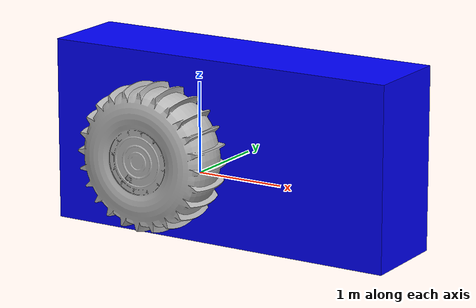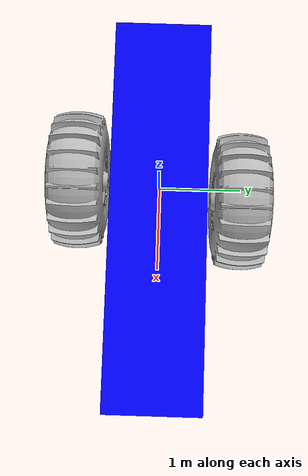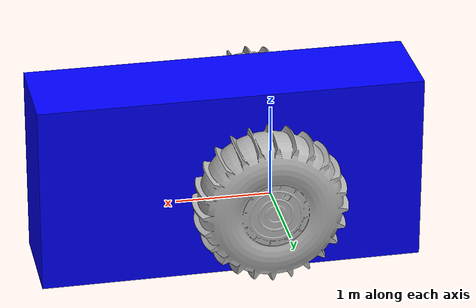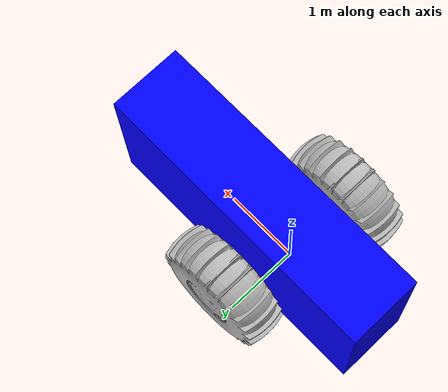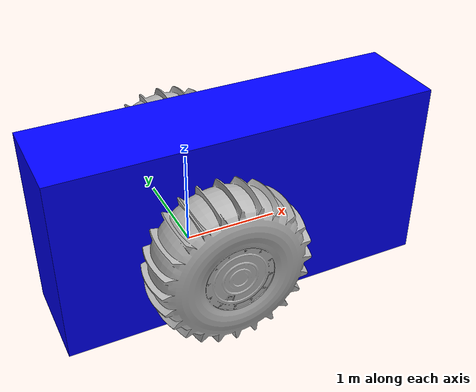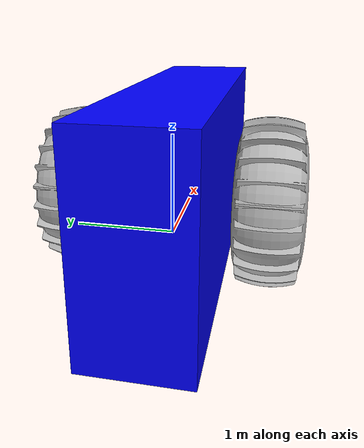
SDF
<?xml version="1.0" ?>
<sdf version="1.10">
  <model name='robot_car' canonical_link='chassis'>
    <pose>0 0 0 0 0 0</pose>   <!--the pose is relative to the world by default-->

    <!--chassis-->

    <link name='chassis'>
      <pose relative_to='__model__'>0.5 0 0.4 0 0 0</pose>
      <inertial>
        <mass>1.14395</mass>
        <inertia>
          <ixx>0.095329</ixx>
          <ixy>0</ixy>
          <ixz>0</ixz>
          <iyy>0.381317</iyy>
          <iyz>0</iyz>
          <izz>0.476646</izz>
        </inertia>
      </inertial>

      <visual name='visual'>
        <geometry>
          <box>
            <size>4.0 1.0 2.0</size>
          </box>
        </geometry>
        <!--Color of the link-->
        <material>
          <ambient>0.0 0.0 1.0 1</ambient>
          <diffuse>0.0 0.0 1.0 1</diffuse>
          <specular>0.0 0.0 1.0 1</specular>
        </material>
      </visual>

      <collision name='collision'>
        <geometry>
          <box>
            <size>2.0 1.0 0.5</size> <!-- You may adjust this to fit the Sherpa mesh dimensions -->
          </box>
        </geometry>
      </collision>
    </link>

    <!--Left wheel-->
    <link name='left_wheel'>
      <pose relative_to="chassis">-0.3 0.6 0 -1.5707 0 0</pose> <!--angles are in radian-->
      <inertial>
        <mass>1</mass>
        <inertia>
          <ixx>0.043333</ixx>
          <ixy>0</ixy>
          <ixz>0</ixz>
          <iyy>0.043333</iyy>
          <iyz>0</iyz>
          <izz>0.08</izz>
        </inertia>
      </inertial>
      <visual name='visual'>    <!--ERROR HERE-->
        <pose>0 0 0 1.5707 0 0</pose>
        <geometry>
          <mesh>
            <uri>meshes/wheel.obj</uri>
            <scale>1 1 1</scale>
          </mesh>
        </geometry>
      </visual>
      <collision name='collision'>
        <geometry>
          <cylinder>
            <radius>0.4</radius>
            <length>0.2</length>
          </cylinder>
        </geometry>
      </collision>
    </link>

    <!--The same as left wheel but with different position-->
    <link name='right_wheel'>
      <pose relative_to="chassis">-0.5 -0.6 0 1.5707 0 0</pose> <!--angles are in radian-->
      <inertial>
        <mass>1</mass>
        <inertia>
          <ixx>0.043333</ixx>
          <ixy>0</ixy>
          <ixz>0</ixz>
          <iyy>0.043333</iyy>
          <iyz>0</iyz>
          <izz>0.08</izz>
        </inertia>
      </inertial>
      <visual name='visual'>      <!--ERROR HERE-->
        <pose>0 0 0 1.5707 0 0</pose>
        <geometry>
          <mesh>
            <uri>meshes/wheel.obj</uri>
            <scale>1 1 1</scale>
          </mesh>
        </geometry>
      </visual>
      <collision name='collision'>
        <geometry>
          <cylinder>
            <radius>0.4</radius>
            <length>0.2</length>
          </cylinder>
        </geometry>
      </collision>
    </link>

    <!--arbitrary frame-->
    <frame name="caster_frame" attached_to='chassis'>
      <pose>0.8 0 -0.2 0 0 0</pose>
    </frame>

    <!--caster wheel-->
    <link name='caster'>
      <pose relative_to='caster_frame'/>
      <inertial>
        <mass>1</mass>
        <inertia>
          <ixx>0.016</ixx>
          <ixy>0</ixy>
          <ixz>0</ixz>
          <iyy>0.016</iyy>
          <iyz>0</iyz>
          <izz>0.016</izz>
        </inertia>
      </inertial>
      <visual name='visual'>
        <geometry>
          <sphere>
            <radius>0.2</radius>
          </sphere>
        </geometry>
        <material>
          <ambient>0.0 1 0.0 1</ambient>
          <diffuse>0.0 1 0.0 1</diffuse>
          <specular>0.0 1 0.0 1</specular>
        </material>
      </visual>
      <collision name='collision'>
        <geometry>
          <sphere>
            <radius>0.2</radius>
          </sphere>
        </geometry>
      </collision>
    </link>

    <!--left wheel joint-->
    <joint name='left_wheel_joint' type='revolute'>
      <pose relative_to='left_wheel'/>
      <parent>chassis</parent>
      <child>left_wheel</child>
      <axis>
        <xyz expressed_in='__model__'>0 1 0</xyz> <!--can be descired to any frame or even arbitrary frames-->
        <limit>
          <lower>-1.79769e+308</lower>    <!--negative infinity-->
          <upper>1.79769e+308</upper>     <!--positive infinity-->
        </limit>
      </axis>
    </joint>

    <!--right wheel joint-->
    <joint name='right_wheel_joint' type='revolute'>
      <pose relative_to='right_wheel'/>
      <parent>chassis</parent>
      <child>right_wheel</child>
      <axis>
        <xyz expressed_in='__model__'>0 1 0</xyz>
        <limit>
          <lower>-1.79769e+308</lower>    <!--negative infinity-->
          <upper>1.79769e+308</upper>     <!--positive infinity-->
        </limit>
      </axis>
    </joint>

    <!--caster wheel joint--> <!--pose defult value is the child-->
    <joint name='caster_wheel' type='ball'>
      <parent>chassis</parent>
      <child>caster</child>
    </joint>
    <plugin
      filename="gz-sim-diff-drive-system"
      name="gz::sim::systems::DiffDrive">
    <left_joint>left_wheel_joint</left_joint>
    <right_joint>right_wheel_joint</right_joint>
    <wheel_separation>1.2</wheel_separation>
    <wheel_radius>0.4</wheel_radius>
    <odom_publish_frequency>1</odom_publish_frequency>
    <topic>cmd_vel</topic>
  </plugin>

  <!-- Moving Forward-->
  <plugin filename="gz-sim-triggered-publisher-system"
    name="gz::sim::systems::TriggeredPublisher">
  <input type="gz.msgs.Int32" topic="/keyboard/keypress">
    <match field="data">16777235</match>
  </input>
  <output type="gz.msgs.Twist" topic="/cmd_vel">
    linear: {x: 0.5}, angular: {z: 0.0}
  </output>
</plugin>
<!-- Moving Backward-->
<plugin filename="gz-sim-triggered-publisher-system"
  name="gz::sim::systems::TriggeredPublisher">
<input type="gz.msgs.Int32" topic="/keyboard/keypress">
  <match field="data">16777237</match>
</input>
<output type="gz.msgs.Twist" topic="/cmd_vel">
  linear: {x: -0.5}, angular: {z: 0.0}
</output>
  </plugin>

  <!-- Moving Left-->
  <plugin filename="gz-sim-triggered-publisher-system"
    name="gz::sim::systems::TriggeredPublisher">
  <input type="gz.msgs.Int32" topic="/keyboard/keypress">
    <match field="data">16777234</match>
  </input>
  <output type="gz.msgs.Twist" topic="/cmd_vel">
    linear: {x: 0.0}, angular: {z: 0.5}
  </output>
</plugin>

<!-- Moving Right-->
<plugin filename="gz-sim-triggered-publisher-system"
  name="gz::sim::systems::TriggeredPublisher">
<input type="gz.msgs.Int32" topic="/keyboard/keypress">
  <match field="data">16777236</match>
</input>
<output type="gz.msgs.Twist" topic="/cmd_vel">
  linear: {x: 0.0}, angular: {z: -0.5}
</output>
  </plugin>

</model>
</sdf>
